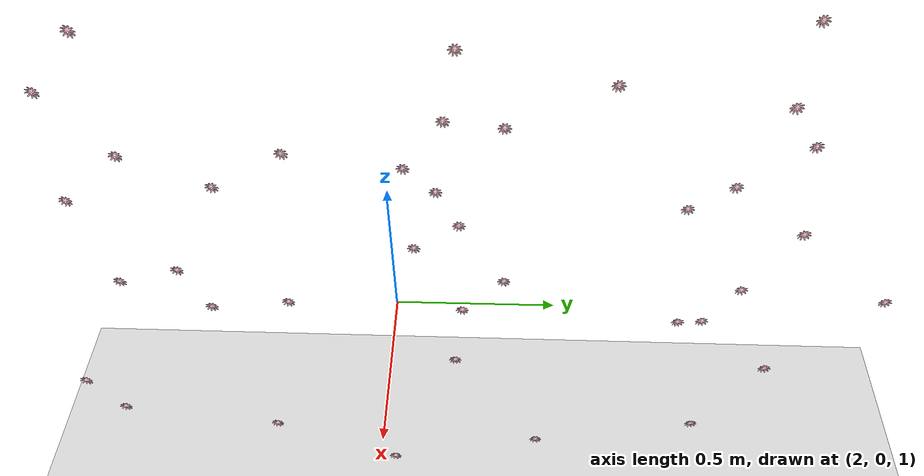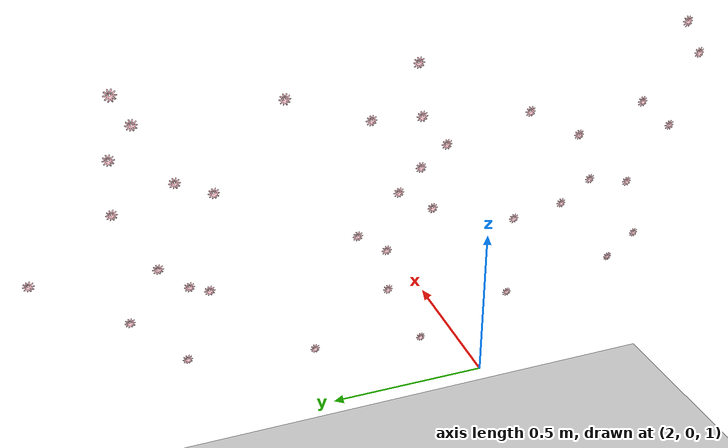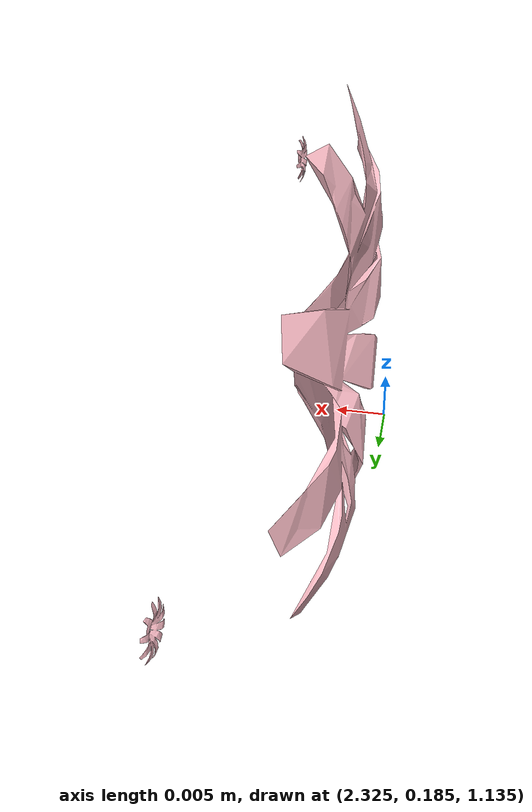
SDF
<?xml version="1.0" ?>
<sdf version="1.4">
  <world name="pollination_world">
    <include>
      <uri>model://ground_plane</uri>
    </include>
    <include>
      <uri>model://sun</uri>
    </include>

    <!-- //__________________________start add targets_________________________// -->
<include>
  <uri>model://flower2</uri>
  <name>target0</name>
  <pose>2.01 1.06 2.1 0 -1.57 0</pose>
</include>
<include>
  <uri>model://flower2</uri>
  <name>target1</name>
  <pose>2.15 1.01 1.96 0 -1.57 0</pose>
</include>
<include>
  <uri>model://flower2</uri>
  <name>target2</name>
  <pose>2.17 1.08 1.8599999999999999 0 -1.57 0</pose>
</include>
<include>
  <uri>model://flower2</uri>
  <name>target3</name>
  <pose>2.2 0.91 1.75 0 -1.57 0</pose>
</include>
<include>
  <uri>model://flower2</uri>
  <name>target4</name>
  <pose>2.22 0.8 1.69 0 -1.57 0</pose>
</include>
<include>
  <uri>model://flower2</uri>
  <name>target5</name>
  <pose>2.26 1.09 1.65 0 -1.57 0</pose>
</include>
<include>
  <uri>model://flower2</uri>
  <name>target6</name>
  <pose>2.27 0.98 1.44 0 -1.57 0</pose>
</include>
<include>
  <uri>model://flower2</uri>
  <name>target7</name>
  <pose>2.3 1.35 1.44 0 -1.57 0</pose>
</include>
<include>
  <uri>model://flower2</uri>
  <name>target8</name>
  <pose>2.3 0.89 1.3399999999999999 0 -1.57 0</pose>
</include>
<include>
  <uri>model://flower2</uri>
  <name>target9</name>
  <pose>2.29 0.83 1.3199999999999998 0 -1.57 0</pose>
</include>
<include>
  <uri>model://flower2</uri>
  <name>target10</name>
  <pose>2.36 1.08 1.21 0 -1.57 0</pose>
</include>
<include>
  <uri>model://flower2</uri>
  <name>target11</name>
  <pose>2.41 0.91 0.99 0 -1.57 0</pose>
</include>
<include>
  <uri>model://flower2</uri>
  <name>target12</name>
  <pose>2.12 0.6 1.9899999999999998 0 -1.57 0</pose>
</include>
<include>
  <uri>model://flower2</uri>
  <name>target13</name>
  <pose>2.09 0.22 2.06 0 -1.57 0</pose>
</include>
<include>
  <uri>model://flower2</uri>
  <name>target14</name>
  <pose>2.15 0.34 1.88 0 -1.57 0</pose>
</include>
<include>
  <uri>model://flower2</uri>
  <name>target15</name>
  <pose>2.13 0.19 1.88 0 -1.57 0</pose>
</include>
<include>
  <uri>model://flower2</uri>
  <name>target16</name>
  <pose>2.17 0.09 1.76 0 -1.57 0</pose>
</include>
<include>
  <uri>model://flower2</uri>
  <name>target17</name>
  <pose>2.18 0.17 1.69 0 -1.57 0</pose>
</include>
<include>
  <uri>model://flower2</uri>
  <name>target18</name>
  <pose>2.21 0.23 1.6 0 -1.57 0</pose>
</include>
<include>
  <uri>model://flower2</uri>
  <name>target19</name>
  <pose>2.22 0.11 1.52 0 -1.57 0</pose>
</include>
<include>
  <uri>model://flower2</uri>
  <name>target20</name>
  <pose>2.26 0.35 1.44 0 -1.57 0</pose>
</include>
<include>
  <uri>model://flower2</uri>
  <name>target21</name>
  <pose>2.29 0.24 1.35 0 -1.57 0</pose>
</include>
<include>
  <uri>model://flower2</uri>
  <name>target22</name>
  <pose>2.33 0.22 1.17 0 -1.57 0</pose>
</include>
<include>
  <uri>model://flower2</uri>
  <name>target23</name>
  <pose>2.43 0.46 0.9099999999999999 0 -1.57 0</pose>
</include>
<include>
  <uri>model://flower2</uri>
  <name>target24</name>
  <pose>2.46 0.04 0.84 0 -1.57 0</pose>
</include>
<include>
  <uri>model://flower2</uri>
  <name>target25</name>
  <pose>2.19 -0.2 1.8199999999999998 0 -1.57 0</pose>
</include>
<include>
  <uri>model://flower2</uri>
  <name>target26</name>
  <pose>2.3 -0.23 1.38 0 -1.57 0</pose>
</include>
<include>
  <uri>model://flower2</uri>
  <name>target27</name>
  <pose>2.44 -0.3 0.98 0 -1.57 0</pose>
</include>
<include>
  <uri>model://flower2</uri>
  <name>target28</name>
  <pose>2.2 -0.39 1.71 0 -1.57 0</pose>
</include>
<include>
  <uri>model://flower2</uri>
  <name>target29</name>
  <pose>2.29 -0.51 1.49 0 -1.57 0</pose>
</include>
<include>
  <uri>model://flower2</uri>
  <name>target30</name>
  <pose>2.33 -0.43 1.3900000000000001 0 -1.57 0</pose>
</include>
<include>
  <uri>model://flower2</uri>
  <name>target31</name>
  <pose>2.09 -0.66 2.09 0 -1.57 0</pose>
</include>
<include>
  <uri>model://flower2</uri>
  <name>target32</name>
  <pose>2.15 -0.77 1.96 0 -1.57 0</pose>
</include>
<include>
  <uri>model://flower2</uri>
  <name>target33</name>
  <pose>2.19 -0.61 1.7999999999999998 0 -1.57 0</pose>
</include>
<include>
  <uri>model://flower2</uri>
  <name>target34</name>
  <pose>2.23 -0.76 1.68 0 -1.57 0</pose>
</include>
<include>
  <uri>model://flower2</uri>
  <name>target35</name>
  <pose>2.3 -0.67 1.45 0 -1.57 0</pose>
</include>
<include>
  <uri>model://flower2</uri>
  <name>target36</name>
  <pose>2.42 -0.82 1.15 0 -1.57 0</pose>
</include>
<include>
  <uri>model://flower2</uri>
  <name>target37</name>
  <pose>2.44 -0.73 1.05 0 -1.57 0</pose>
</include>
  <!-- //_________________________finish add target_______________________________// -->

    <scene>
      <shadows>false</shadows>
    </scene>

    <!-- Only one ROS interface plugin is required per world, as any other plugin can connect a Gazebo
         topic to a ROS topic (or vise versa). -->
    <plugin name="ros_interface_plugin" filename="librotors_gazebo_ros_interface_plugin.so"/>

    <spherical_coordinates>
      <surface_model>EARTH_WGS84</surface_model>
      <latitude_deg>47.3667</latitude_deg>
      <longitude_deg>8.5500</longitude_deg>
      <elevation>500.0</elevation>
      <heading_deg>0</heading_deg>
    </spherical_coordinates>
    <physics type='ode'>
      <ode>
        <solver>
          <type>quick</type>
          <iters>700</iters>
          <sor>1.3</sor>
        </solver>
        <constraints>
          <cfm>0</cfm>
          <erp>0.2</erp>
          <contact_max_correcting_vel>100</contact_max_correcting_vel>
          <contact_surface_layer>0.001</contact_surface_layer>
        </constraints>
      </ode>
      <max_step_size>0.01</max_step_size>
      <real_time_factor>1</real_time_factor>
      <real_time_update_rate>100</real_time_update_rate>
      <gravity>0 0 -9.8</gravity>
    </physics>
  </world>
</sdf>

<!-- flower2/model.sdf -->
<sdf version="1.5">
  <model name="flower">
    <static>true</static>
    <link name="link">
      <pose>0 0 0 0 0 0</pose>

      <visual name="visual">
        <geometry>
          <mesh>
            <uri>model://flower2/meshes/flower.STL</uri>
            <scale>0.001 0.001 0.001</scale>
          </mesh>
        </geometry>
        <material> <!-- Wheel material -->
          <ambient>1 0.75 0.79 1</ambient>
          <diffuse>1 0.75 0.79 1</diffuse>
          <specular>1 1 1 1</specular>
          <emissive>0 0 0 1</emissive>
        </material> <!-- End wheel material -->
      </visual>

    </link>
  </model>
</sdf>
